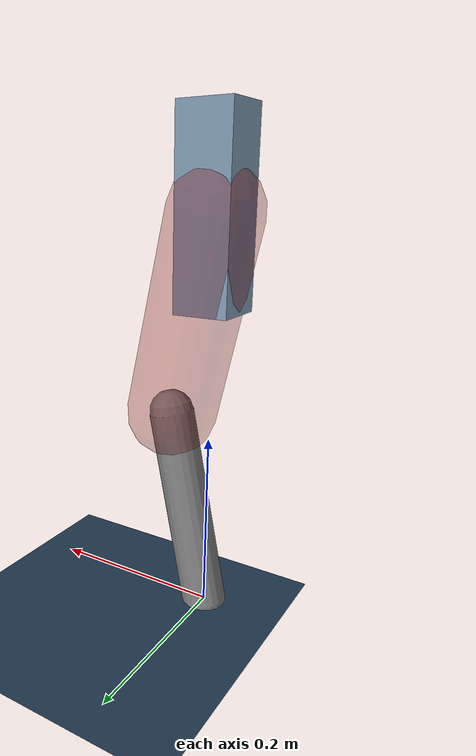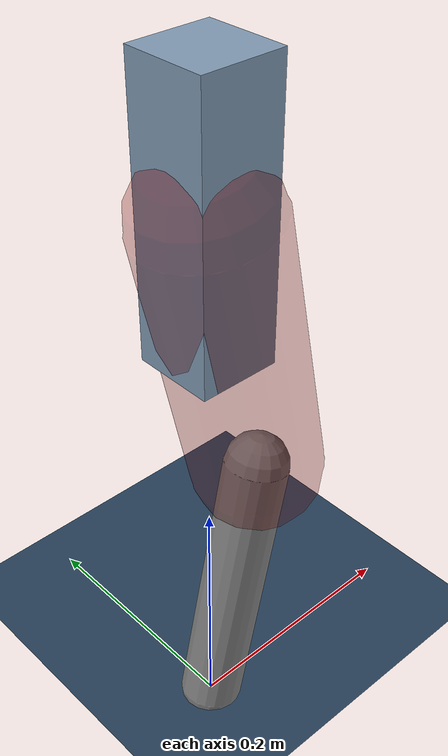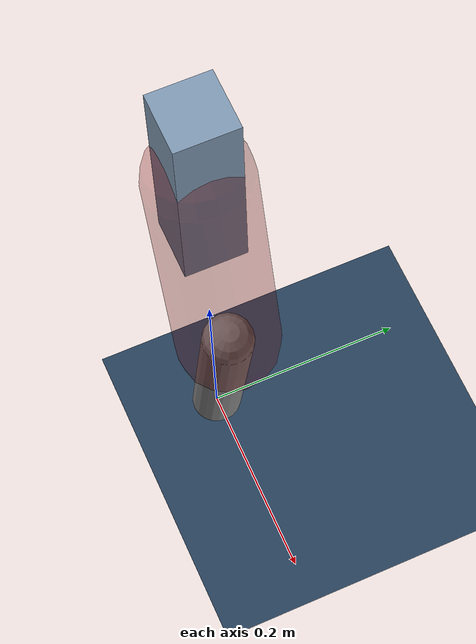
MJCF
<mujoco model="Hopper2D">
	<compiler inertiafromgeom="true" angle="radian" />
	<option timestep="0.001" integrator="implicit" cone="elliptic" solver="Newton" tolerance="1e-10" />

	<default>
		<geom contype="1" conaffinity="1" condim="3" friction="2 0.005 0.0001" solref="0.005 1" />
		<joint limited="true" damping="0.1" />
	</default>

	<asset>
		<texture name="skybox" type="skybox" builtin="gradient" rgb1=".4 .6 .8" rgb2="0 0 0" width="800" height="800" />
		<texture name="grid" type="2d" builtin="checker" rgb1=".1 .2 .3" rgb2=".2 .3 .4" width="300" height="300" mark="edge" markrgb=".2 .3 .4" />
		<material name="ground" texture="grid" texrepeat="1 1" texuniform="true" reflectance="0.1" />
		<material name="leg" rgba="0.5 0.6 0.7 1" />
	</asset>

	<worldbody>

		<geom name="floor" type="plane" size="5 5 0.25" material="ground" />

		<light directional="false" diffuse="0.8 0.8 0.8" specular="0.3 0.3 0.3" pos="0 0 2" dir="0 0 -1" />
		<light mode="targetbodycom" target="base" directional="false" diffuse="0.8 0.8 0.8" specular="0.3 0.3 0.3" pos="0 0 2" dir="0 0 -1" />

		<camera name="fixed" pos="0 -2 1" xyaxes="1 0 0 0 0 1" />
		<camera name="tracking" mode="trackcom" pos="0 -3 1" />

		<body name="root" pos="0 0 0.4392075594275368">
			<joint name="slide_x" type="slide" axis="1 0 0" range="-100 100" />
			<joint name="slide_z" type="slide" axis="0 0 1" range="0 10" />

			<body name="base" pos="0 0 0">
				<geom name="torso" type="box" size="0.03 0.03 0.1" mass="3.4739999999999998" material="leg" />

				<body name="link1" pos="0 0 0" euler="0 1.3549735909866554 0">
					<joint type="hinge" axis="0 -1 0" pos="0 0 0" name="hinge1" limited="true" range="-3.14 3.14" stiffness="0" damping="0.1" />
					<geom name="thigh" type="capsule" fromto="0 0 0 0.22002040211080579 0 0" size="0.05" rgba="0.5 0 0 0.3" mass="0.7797510052770145" />

					<body name="link2" pos="0.22002040211080579 0 0" euler="0 0.42288497813931125 0">
						<joint type="hinge" axis="0 -1 0" pos="0 0 0" name="hinge2" limited="true" range="-3.14 3.14" stiffness="0" damping="0.1" />
						<geom name="shank" type="capsule" fromto="0 0 0 0.22918715731673103 0 0" size="0.025" mass="0.4253497258533848" />

					</body>
				</body>
			</body>
		</body>
	</worldbody>

	<actuator>
		<motor name="torque1" joint="hinge1" ctrlrange="-178.40145413981872 178.40145413981872" ctrllimited="true" gear="1" />
		<motor name="torque2" joint="hinge2" ctrlrange="-77.64009215062269 77.64009215062269" ctrllimited="true" gear="1" />
	</actuator>
</mujoco>
